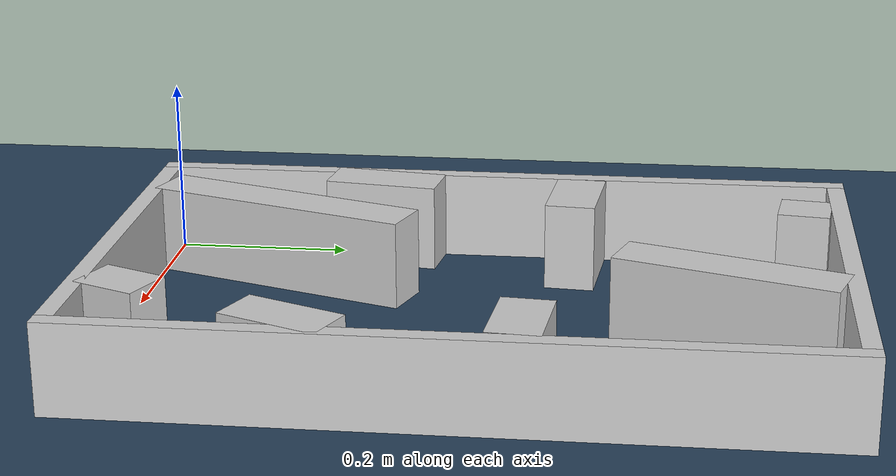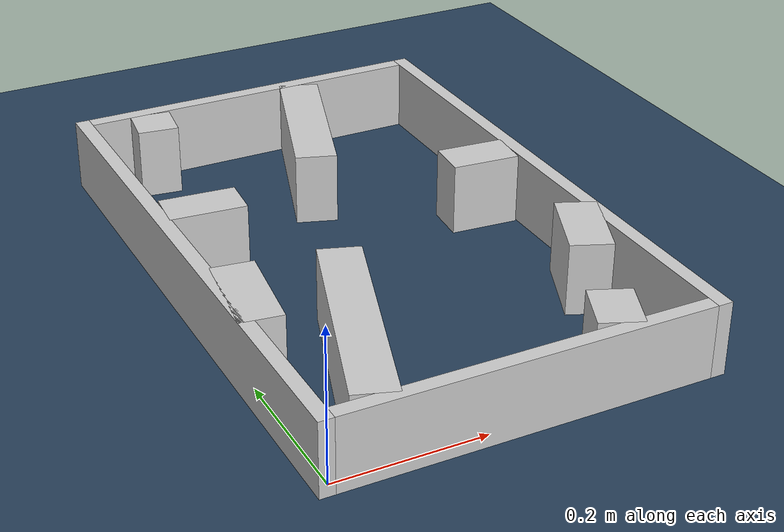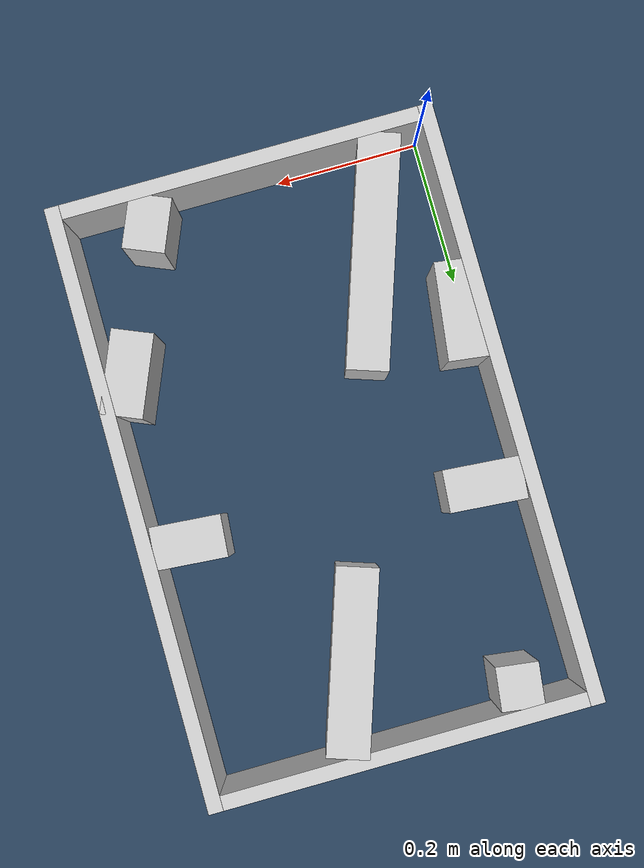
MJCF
<?xml version="1.0" ?>
<mujoco model="generated_real_template">
  <compiler angle="degree"/>
  <option timestep="0.002" integrator="implicitfast" iterations="100" cone="elliptic"/>
  <default>
    <geom density="1"/>
  </default>
  <asset>
    <texture builtin="gradient" height="3072" rgb1="0.3 0.5 0.7" rgb2="0 0 0" type="skybox" width="512"/>
    <texture builtin="checker" height="300" mark="edge" markrgb="0.8 0.8 0.8" name="groundplane" rgb1="0.2 0.3 0.4" rgb2="0.1 0.2 0.3" type="2d" width="300"/>
    <material name="groundplane" reflectance="0.2" texrepeat="5 5" texture="groundplane" texuniform="true"/>
  </asset>
  <worldbody>
    <light dir="0 0 -1" directional="true" pos="0 0 1.5"/>
    <geom name="floor" type="plane" condim="4" friction="0.5 0.005 0.001" material="groundplane" size="0 0 0.05"/>
    <body name="walls">
      <geom name="wall_boundary_left" type="box" condim="4" friction="1.0 0.005 0.0001" rgba="0.8 0.8 0.8 1" pos="-0.010000 0.387500 0.050000" euler="0 0 0.000000" size="0.010000 0.407500 0.050000"/>
      <geom name="wall_boundary_right" type="box" condim="4" friction="1.0 0.005 0.0001" rgba="0.8 0.8 0.8 1" pos="0.500000 0.387500 0.050000" euler="0 0 0.000000" size="0.010000 0.407500 0.050000"/>
      <geom name="wall_boundary_bottom" type="box" condim="4" friction="1.0 0.005 0.0001" rgba="0.8 0.8 0.8 1" pos="0.245000 -0.010000 0.050000" euler="0 0 0.000000" size="0.245000 0.010000 0.050000"/>
      <geom name="wall_boundary_top" type="box" condim="4" friction="1.0 0.005 0.0001" rgba="0.8 0.8 0.8 1" pos="0.245000 0.785000 0.050000" euler="0 0 0.000000" size="0.245000 0.010000 0.050000"/>
      <geom name="wall_inner_1_1" type="box" condim="4" friction="1.0 0.005 0.0001" rgba="0.8 0.8 0.8 1" pos="0.107673 0.149864 0.050000" euler="0 0 71.314283" size="0.158203 0.028500 0.050000"/>
      <geom name="wall_inner_1_2" type="box" condim="4" friction="1.0 0.005 0.0001" rgba="0.8 0.8 0.8 1" pos="0.279610 0.658246 0.050000" euler="0 0 71.314283" size="0.123250 0.028500 0.050000"/>
      <geom name="wall_inner_2_1" type="box" condim="4" friction="1.0 0.005 0.0001" rgba="0.8 0.8 0.8 1" pos="0.442637 0.451868 0.050000" euler="0 0 175.365835" size="0.047518 0.028500 0.050000"/>
      <geom name="wall_inner_2_2" type="box" condim="4" friction="1.0 0.005 0.0001" rgba="0.8 0.8 0.8 1" pos="0.051727 0.483555 0.050000" euler="0 0 175.365835" size="0.051896 0.028500 0.050000"/>
      <geom name="wall_inner_3_1" type="box" condim="4" friction="1.0 0.005 0.0001" rgba="0.8 0.8 0.8 1" pos="0.461725 0.218564 0.050000" euler="0 0 -112.773082" size="0.056824 0.028500 0.050000"/>
      <geom name="wall_inner_3_2" type="box" condim="4" friction="1.0 0.005 0.0001" rgba="0.8 0.8 0.8 1" pos="0.384293 0.034118 0.050000" euler="0 0 -112.773082" size="0.037002 0.028500 0.050000"/>
      <geom name="wall_inner_4_1" type="box" condim="4" friction="1.0 0.005 0.0001" rgba="0.8 0.8 0.8 1" pos="0.016784 0.255232 0.050000" euler="0 0 82.592793" size="0.066092 0.028500 0.050000"/>
      <geom name="wall_inner_4_2" type="box" condim="4" friction="1.0 0.005 0.0001" rgba="0.8 0.8 0.8 1" pos="0.080600 0.746107 0.050000" euler="0 0 82.592793" size="0.029136 0.028500 0.050000"/>
    </body>
  </worldbody>
</mujoco>
